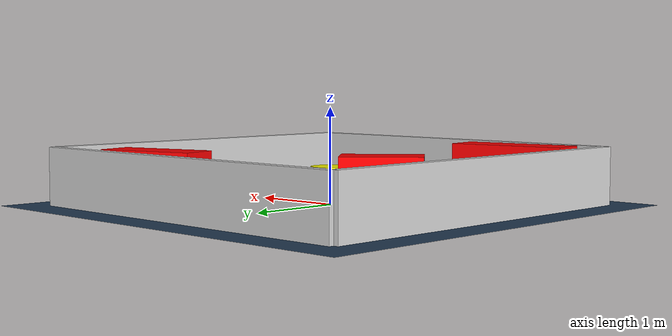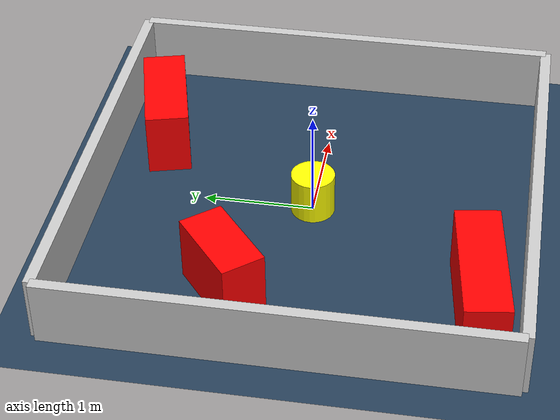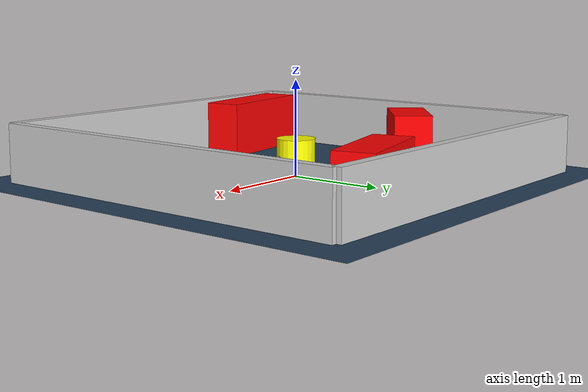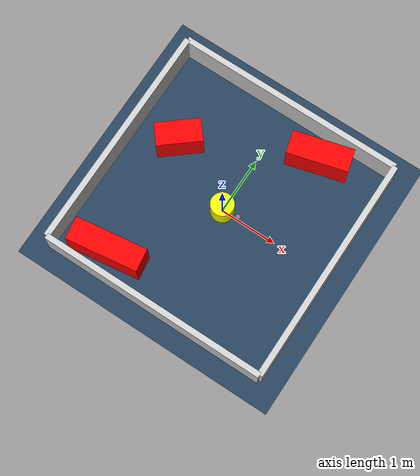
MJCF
<?xml version="1.0" ?>
<mujoco model="generated_environment">
  <option timestep="0.01" integrator="RK4" cone="elliptic"/>
  <default>
    <geom density="1"/>
  </default>
  <asset>
    <texture builtin="gradient" height="3072" rgb1="0.3 0.5 0.7" rgb2="0 0 0" type="skybox" width="512"/>
    <texture builtin="checker" height="300" mark="edge" markrgb="0.8 0.8 0.8" name="groundplane" rgb1="0.2 0.3 0.4" rgb2="0.1 0.2 0.3" type="2d" width="300"/>
    <material name="groundplane" reflectance="0.2" texrepeat="5 5" texture="groundplane" texuniform="true"/>
    <material name="robot" rgba="0.0 1.0 0.0 1"/>
  </asset>
  <worldbody>
    <light dir="0 0 -1" directional="true" pos="0 0 1.5"/>
    <geom condim="4" friction="1.0 0.005 0.001" material="groundplane" name="floor" size="0 0 0.05" type="plane"/>
    <body name="walls">
      <geom name="wall_1" condim="4" pos="-2.0 0.0 0.3" rgba="0.800000011920929 0.800000011920929 0.800000011920929 1.0" size="0.05 2.0 0.3" type="box"/>
      <geom name="wall_2" condim="4" pos="2.0 0.0 0.3" rgba="0.800000011920929 0.800000011920929 0.800000011920929 1.0" size="0.05 2.0 0.3" type="box"/>
      <geom name="wall_3" condim="4" pos="0.0 -2.0 0.3" rgba="0.800000011920929 0.800000011920929 0.800000011920929 1.0" size="2.0 0.05 0.3" type="box"/>
      <geom name="wall_4" condim="4" pos="0.0 2.0 0.3" rgba="0.800000011920929 0.800000011920929 0.800000011920929 1.0" size="2.0 0.05 0.3" type="box"/>
    </body>
    <body name="robot">
      <joint name="joint_x" type="slide" pos="0 0 0" axis="1 0 0"/>
      <joint name="joint_y" type="slide" pos="0 0 0" axis="0 1 0"/>
      <geom name="robot" type="sphere" pos="0.3 0.0 0.2" size="0.05" mass="5." friction="1.0 0.005 0.0001" condim="4" rgba="0.5 0.5 0.5 1.0"/>
      <site name="sensor_ball"/>
    </body>
    <body name="obstacle_movable_1">
      <geom name="obstacle_movable_1" condim="4" pos="0.0 0.0 0.2" euler="0 0 0.0" friction="1.0 0.005 0.001" rgba="1.0 1.0 0.0 1.0" size="0.2 0.2 0.0" type="cylinder" mass="0.1"/>
      <joint type="free"/>
    </body>
    <body name="obstacle_2_static">
      <geom name="obstacle_2_static" condim="4" pos="-1.2297705122802045 0.5778832511326131 0.3" euler="0 0 39.72607715780201" friction="1.0 0.005 0.001" rgba="1 0 0 1" size="0.38623012763824316 0.2 0.3" type="box"/>
    </body>
    <body name="obstacle_3_static">
      <geom name="obstacle_3_static" condim="4" pos="0.8594082487299042 1.5621691343431012 0.3" euler="0 0 195.0510367035458" friction="1.0 0.005 0.001" rgba="1 0 0 1" size="0.5254258636437406 0.2 0.3" type="box"/>
    </body>
    <body name="obstacle_4_static">
      <geom name="obstacle_4_static" condim="4" pos="-1.1384136276833012 -1.5924255905591078 0.3" euler="0 0 8.091657632672407" friction="1.0 0.005 0.001" rgba="1 0 0 1" size="0.6268970115375955 0.2 0.3" type="box"/>
    </body>
  </worldbody>
  <actuator>
    <motor name="actuator_x" joint="joint_x" gear="1" ctrlrange="-1 1"/>
    <motor name="actuator_y" joint="joint_y" gear="1" ctrlrange="-1 1"/>
  </actuator>
</mujoco>
